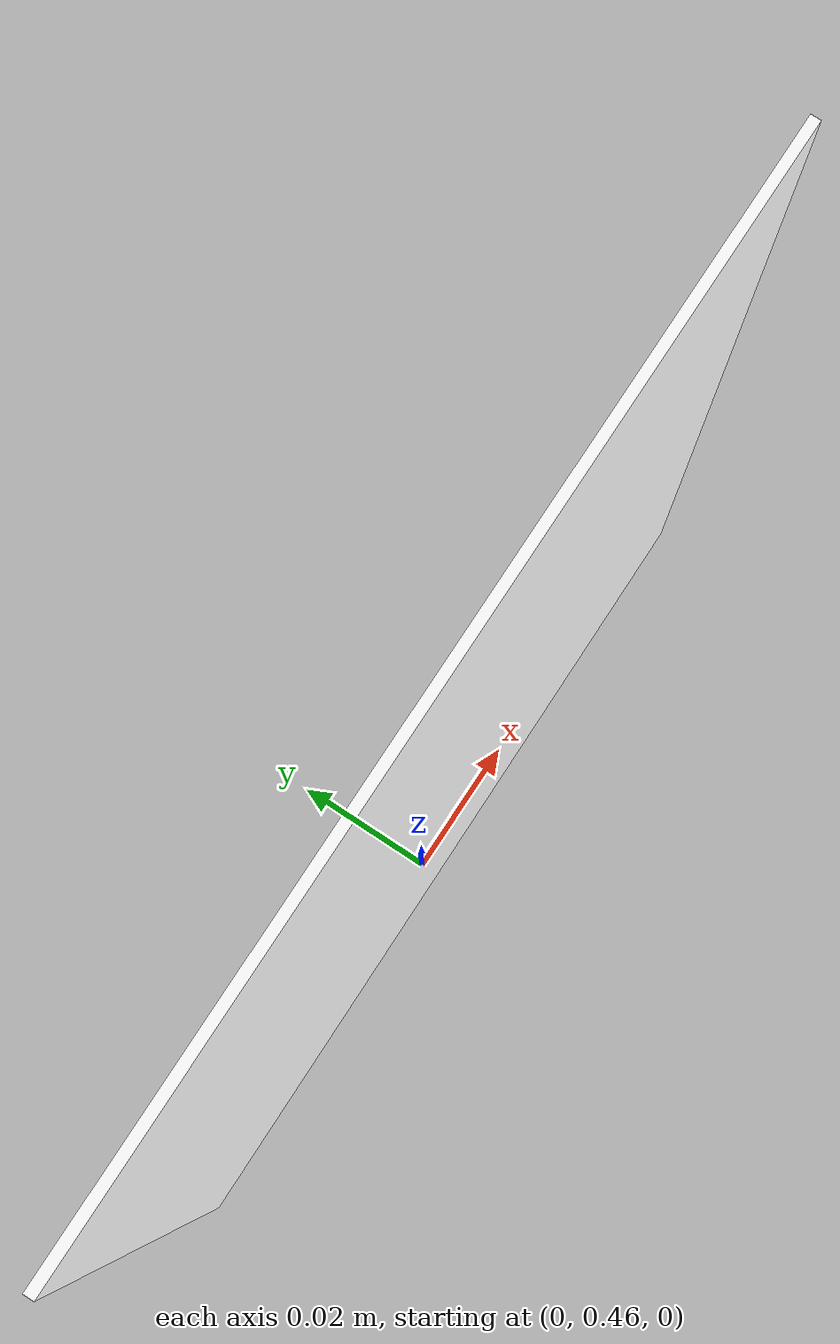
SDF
<sdf version="1.10">
 <world name="pista_a">
  <model name="aruco_marker">
   <static>true</static>
   <link name="marker">
    <visual name="v_aruco_card">
     <pose>0.00000 0.45650 0.07500 0.00000 0 0</pose>
     <geometry><box><size>0.10667 0.00100 0.10667</size></box></geometry>
     <material><ambient>0.700 0.700 0.700 1</ambient><diffuse>1.000 1.000 1.000 1</diffuse></material>
    </visual>
    <visual name="v_aruco_0_0">
     <pose>0.00000 0.45750 0.10833 0.00000 0 0</pose>
     <geometry><box><size>0.08000 0.00100 0.01333</size></box></geometry>
     <material><ambient>0.014 0.014 0.014 1</ambient><diffuse>0.020 0.020 0.020 1</diffuse></material>
    </visual>
    <visual name="v_aruco_1_0">
     <pose>0.03333 0.45750 0.09500 0.00000 0 0</pose>
     <geometry><box><size>0.01333 0.00100 0.01333</size></box></geometry>
     <material><ambient>0.014 0.014 0.014 1</ambient><diffuse>0.020 0.020 0.020 1</diffuse></material>
    </visual>
    <visual name="v_aruco_1_3">
     <pose>-0.00667 0.45750 0.09500 0.00000 0 0</pose>
     <geometry><box><size>0.01333 0.00100 0.01333</size></box></geometry>
     <material><ambient>0.014 0.014 0.014 1</ambient><diffuse>0.020 0.020 0.020 1</diffuse></material>
    </visual>
    <visual name="v_aruco_1_5">
     <pose>-0.03333 0.45750 0.09500 0.00000 0 0</pose>
     <geometry><box><size>0.01333 0.00100 0.01333</size></box></geometry>
     <material><ambient>0.014 0.014 0.014 1</ambient><diffuse>0.020 0.020 0.020 1</diffuse></material>
    </visual>
    <visual name="v_aruco_2_0">
     <pose>0.03333 0.45750 0.08167 0.00000 0 0</pose>
     <geometry><box><size>0.01333 0.00100 0.01333</size></box></geometry>
     <material><ambient>0.014 0.014 0.014 1</ambient><diffuse>0.020 0.020 0.020 1</diffuse></material>
    </visual>
    <visual name="v_aruco_2_3">
     <pose>-0.00667 0.45750 0.08167 0.00000 0 0</pose>
     <geometry><box><size>0.01333 0.00100 0.01333</size></box></geometry>
     <material><ambient>0.014 0.014 0.014 1</ambient><diffuse>0.020 0.020 0.020 1</diffuse></material>
    </visual>
    <visual name="v_aruco_2_5">
     <pose>-0.03333 0.45750 0.08167 0.00000 0 0</pose>
     <geometry><box><size>0.01333 0.00100 0.01333</size></box></geometry>
     <material><ambient>0.014 0.014 0.014 1</ambient><diffuse>0.020 0.020 0.020 1</diffuse></material>
    </visual>
    <visual name="v_aruco_3_0">
     <pose>0.03333 0.45750 0.06833 0.00000 0 0</pose>
     <geometry><box><size>0.01333 0.00100 0.01333</size></box></geometry>
     <material><ambient>0.014 0.014 0.014 1</ambient><diffuse>0.020 0.020 0.020 1</diffuse></material>
    </visual>
    <visual name="v_aruco_3_2">
     <pose>-0.01333 0.45750 0.06833 0.00000 0 0</pose>
     <geometry><box><size>0.05333 0.00100 0.01333</size></box></geometry>
     <material><ambient>0.014 0.014 0.014 1</ambient><diffuse>0.020 0.020 0.020 1</diffuse></material>
    </visual>
    <visual name="v_aruco_4_0">
     <pose>0.02000 0.45750 0.05500 0.00000 0 0</pose>
     <geometry><box><size>0.04000 0.00100 0.01333</size></box></geometry>
     <material><ambient>0.014 0.014 0.014 1</ambient><diffuse>0.020 0.020 0.020 1</diffuse></material>
    </visual>
    <visual name="v_aruco_4_4">
     <pose>-0.02667 0.45750 0.05500 0.00000 0 0</pose>
     <geometry><box><size>0.02667 0.00100 0.01333</size></box></geometry>
     <material><ambient>0.014 0.014 0.014 1</ambient><diffuse>0.020 0.020 0.020 1</diffuse></material>
    </visual>
    <visual name="v_aruco_5_0">
     <pose>0.00000 0.45750 0.04167 0.00000 0 0</pose>
     <geometry><box><size>0.08000 0.00100 0.01333</size></box></geometry>
     <material><ambient>0.014 0.014 0.014 1</ambient><diffuse>0.020 0.020 0.020 1</diffuse></material>
    </visual>
   </link>
  </model>
 </world>
</sdf>
